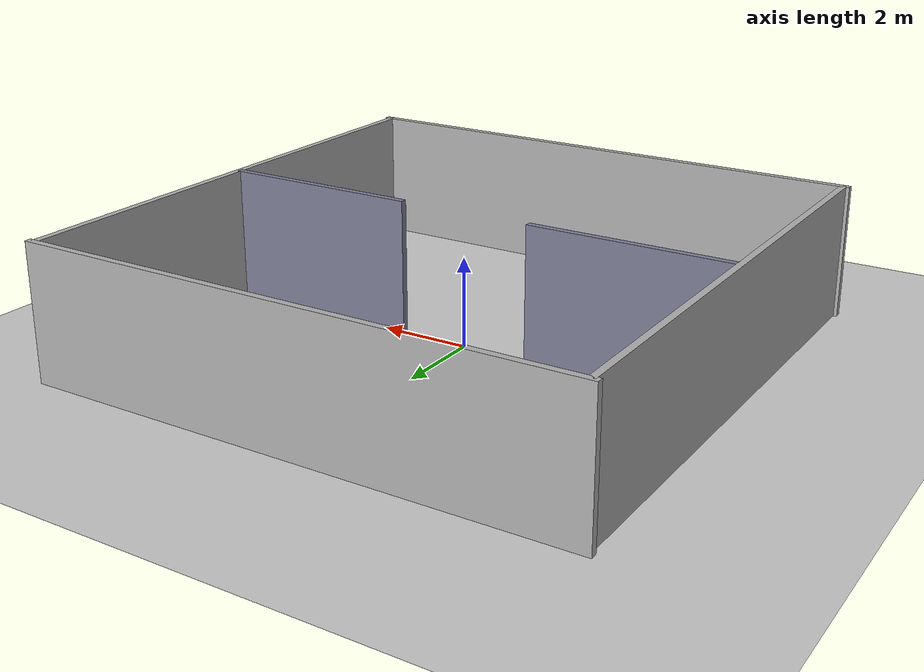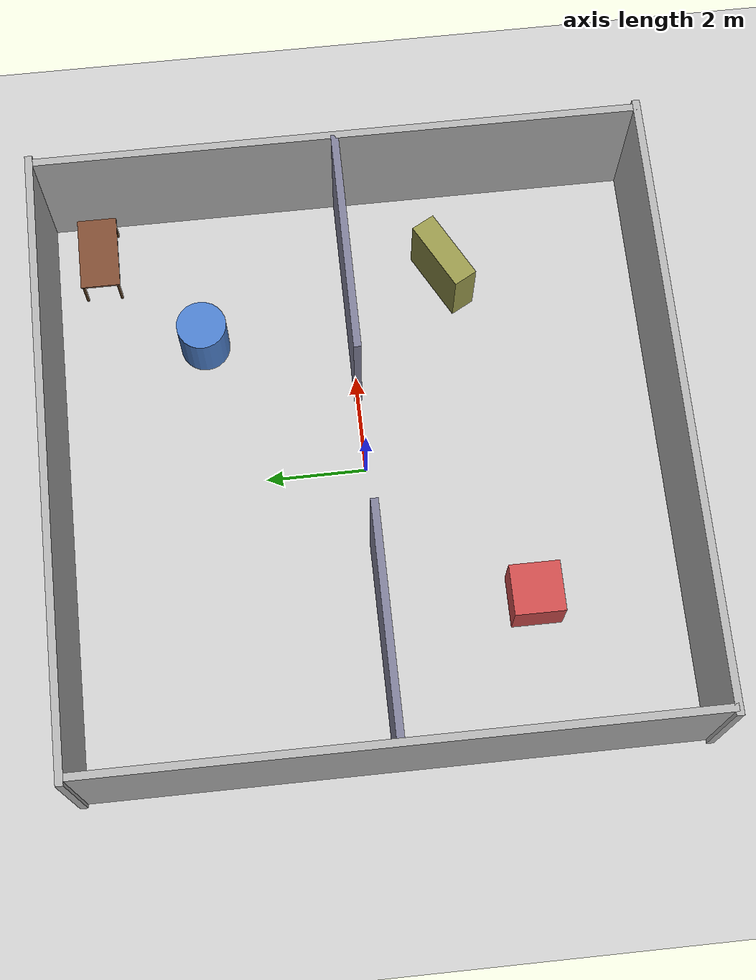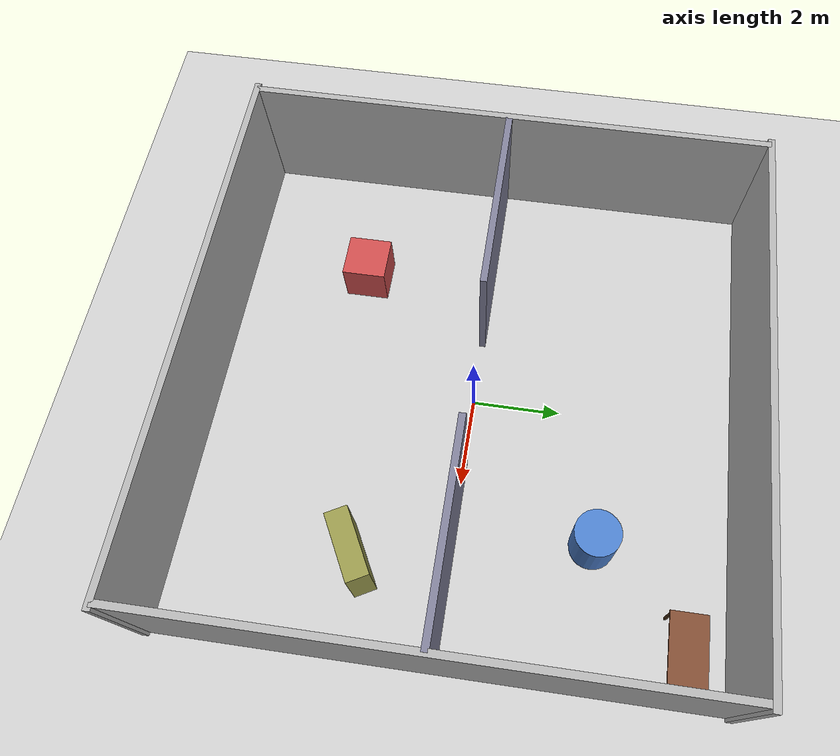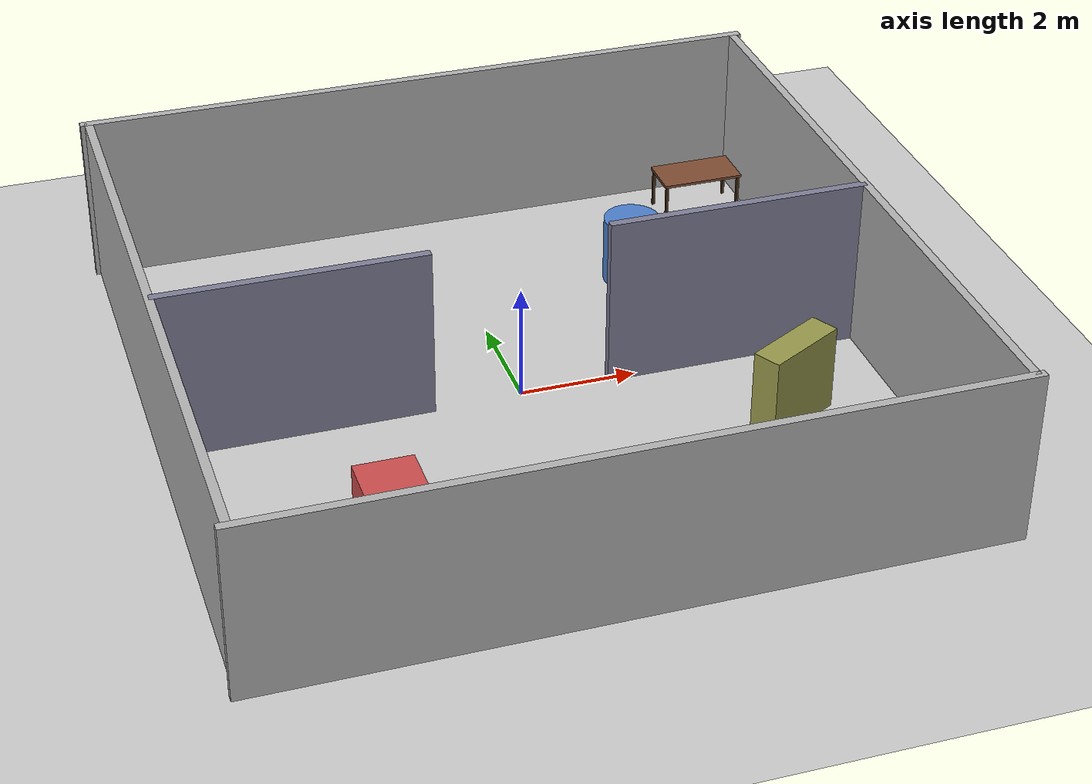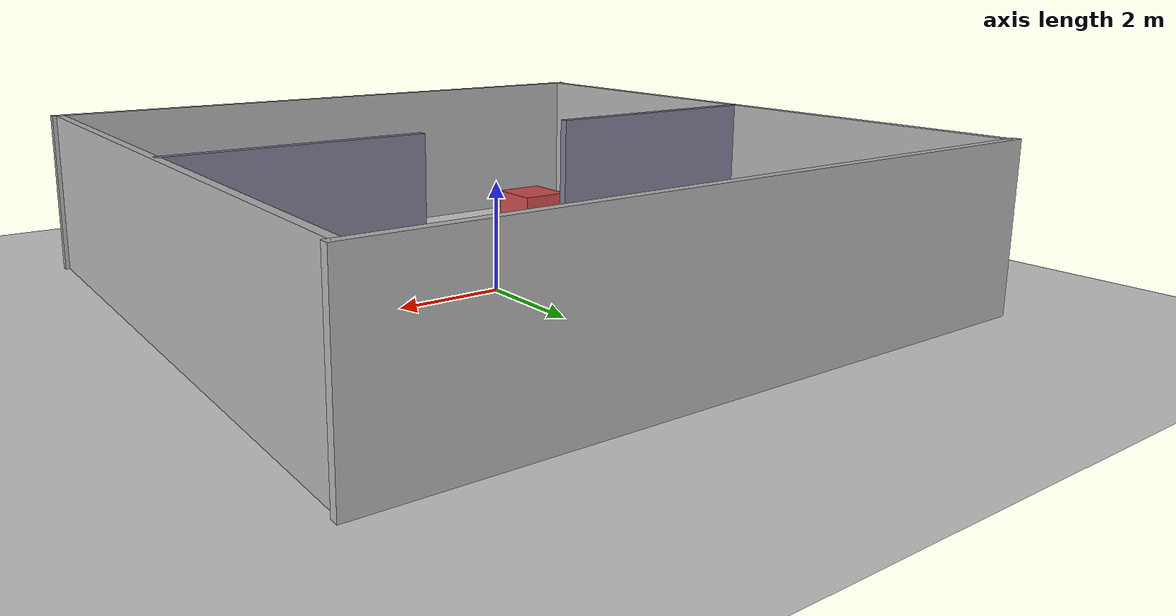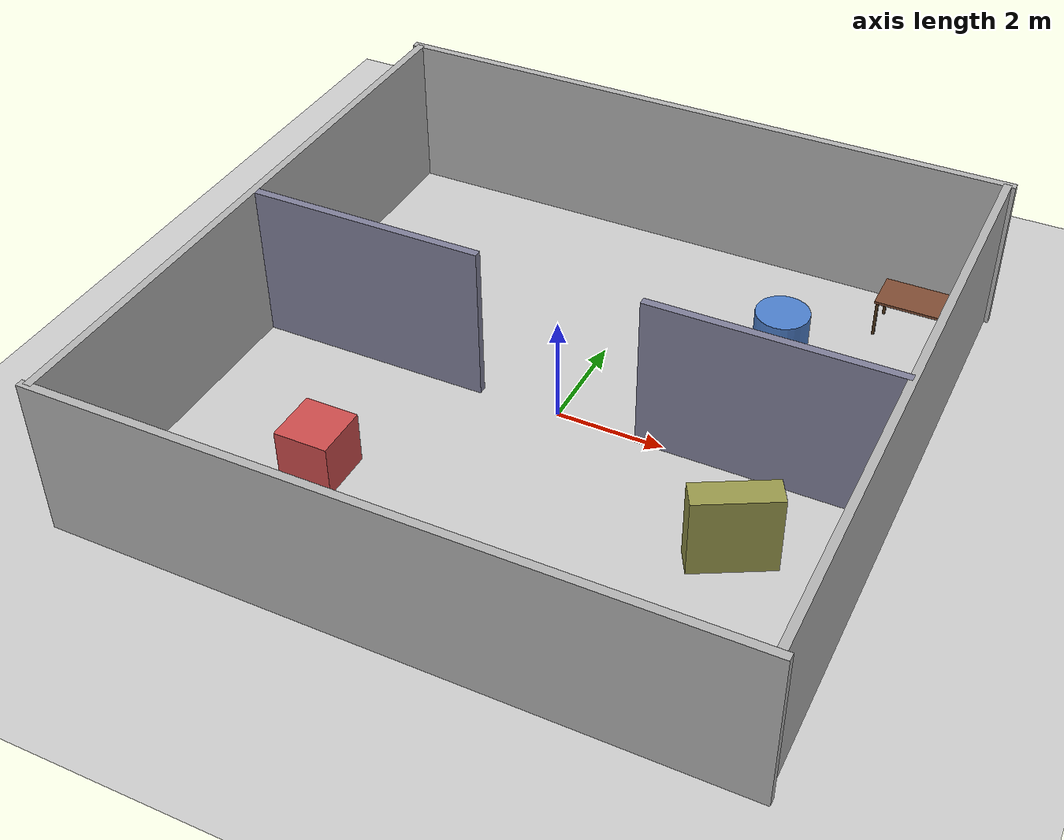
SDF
<?xml version="1.0" ?>
<sdf version="1.6">
  <world name="frontier_test">

    <include><uri>model://ground_plane</uri></include>
    <include><uri>model://sun</uri></include>

    <!-- ===== Outer walls (12m x 12m room) ===== -->
    <model name="wall_north">
      <static>true</static>
      <pose>0 6 1.5 0 0 0</pose>
      <link name="link">
        <collision name="c"><geometry><box><size>12.3 0.15 3</size></box></geometry></collision>
        <visual name="v">
          <geometry><box><size>12.3 0.15 3</size></box></geometry>
          <material><ambient>0.7 0.7 0.7 1</ambient></material>
        </visual>
      </link>
    </model>

    <model name="wall_south">
      <static>true</static>
      <pose>0 -6 1.5 0 0 0</pose>
      <link name="link">
        <collision name="c"><geometry><box><size>12.3 0.15 3</size></box></geometry></collision>
        <visual name="v">
          <geometry><box><size>12.3 0.15 3</size></box></geometry>
          <material><ambient>0.7 0.7 0.7 1</ambient></material>
        </visual>
      </link>
    </model>

    <model name="wall_east">
      <static>true</static>
      <pose>6 0 1.5 0 0 0</pose>
      <link name="link">
        <collision name="c"><geometry><box><size>0.15 12 3</size></box></geometry></collision>
        <visual name="v">
          <geometry><box><size>0.15 12 3</size></box></geometry>
          <material><ambient>0.7 0.7 0.7 1</ambient></material>
        </visual>
      </link>
    </model>

    <model name="wall_west">
      <static>true</static>
      <pose>-6 0 1.5 0 0 0</pose>
      <link name="link">
        <collision name="c"><geometry><box><size>0.15 12 3</size></box></geometry></collision>
        <visual name="v">
          <geometry><box><size>0.15 12 3</size></box></geometry>
          <material><ambient>0.7 0.7 0.7 1</ambient></material>
        </visual>
      </link>
    </model>

    <!-- ===== Divider with doorway in the middle ===== -->
    <!-- Left part of divider: x=-6 to -1.5 -->
    <model name="divider_left">
      <static>true</static>
      <pose>-3.75 0 1.5 0 0 0</pose>
      <link name="link">
        <collision name="c"><geometry><box><size>4.5 0.15 3</size></box></geometry></collision>
        <visual name="v">
          <geometry><box><size>4.5 0.15 3</size></box></geometry>
          <material><ambient>0.5 0.5 0.6 1</ambient></material>
        </visual>
      </link>
    </model>

    <!-- Right part: x=1.5 to 6 (gap from -1.5 to 1.5 = 3m doorway) -->
    <model name="divider_right">
      <static>true</static>
      <pose>3.75 0 1.5 0 0 0</pose>
      <link name="link">
        <collision name="c"><geometry><box><size>4.5 0.15 3</size></box></geometry></collision>
        <visual name="v">
          <geometry><box><size>4.5 0.15 3</size></box></geometry>
          <material><ambient>0.5 0.5 0.6 1</ambient></material>
        </visual>
      </link>
    </model>

    <!-- ===== Obstacles (give OctoMap something interesting) ===== -->
    <model name="box1">
      <static>true</static>
      <pose>-3 -3 0.5 0 0 0</pose>
      <link name="link">
        <collision name="c"><geometry><box><size>1 1 1</size></box></geometry></collision>
        <visual name="v">
          <geometry><box><size>1 1 1</size></box></geometry>
          <material><ambient>0.8 0.3 0.3 1</ambient></material>
        </visual>
      </link>
    </model>

    <model name="cylinder1">
      <static>true</static>
      <pose>3 3 0.6 0 0 0</pose>
      <link name="link">
        <collision name="c"><geometry><cylinder><radius>0.5</radius><length>1.2</length></cylinder></geometry></collision>
        <visual name="v">
          <geometry><cylinder><radius>0.5</radius><length>1.2</length></cylinder></geometry>
          <material><ambient>0.3 0.5 0.8 1</ambient></material>
        </visual>
      </link>
    </model>

    <model name="box2">
      <static>true</static>
      <pose>4 -2 0.75 0 0 0.5</pose>
      <link name="link">
        <collision name="c"><geometry><box><size>1.5 0.5 1.5</size></box></geometry></collision>
        <visual name="v">
          <geometry><box><size>1.5 0.5 1.5</size></box></geometry>
          <material><ambient>0.6 0.6 0.3 1</ambient></material>
        </visual>
      </link>
    </model>
    <!-- ===== Simple desk ===== -->
    <model name="desk">
      <static>true</static>
      <pose>5.0 5.0 0 0 0 0</pose>
      <link name="link">
        <collision name="top_c">
          <pose>0 0 0.75 0 0 0</pose>
          <geometry><box><size>1.5 0.8 0.05</size></box></geometry>
        </collision>
        <visual name="top_v">
          <pose>0 0 0.75 0 0 0</pose>
          <geometry><box><size>1.5 0.8 0.05</size></box></geometry>
          <material><ambient>0.5 0.3 0.2 1</ambient></material>
        </visual>

        <collision name="leg1_c">
          <pose>0.7 0.35 0.365 0 0 0</pose>
          <geometry><box><size>0.05 0.05 0.73</size></box></geometry>
        </collision>
        <visual name="leg1_v">
          <pose>0.7 0.35 0.365 0 0 0</pose>
          <geometry><box><size>0.05 0.05 0.73</size></box></geometry>
          <material><ambient>0.3 0.2 0.1 1</ambient></material>
        </visual>

        <collision name="leg2_c">
          <pose>-0.7 0.35 0.365 0 0 0</pose>
          <geometry><box><size>0.05 0.05 0.73</size></box></geometry>
        </collision>
        <visual name="leg2_v">
          <pose>-0.7 0.35 0.365 0 0 0</pose>
          <geometry><box><size>0.05 0.05 0.73</size></box></geometry>
          <material><ambient>0.3 0.2 0.1 1</ambient></material>
        </visual>

        <collision name="leg3_c">
          <pose>0.7 -0.35 0.365 0 0 0</pose>
          <geometry><box><size>0.05 0.05 0.73</size></box></geometry>
        </collision>
        <visual name="leg3_v">
          <pose>0.7 -0.35 0.365 0 0 0</pose>
          <geometry><box><size>0.05 0.05 0.73</size></box></geometry>
          <material><ambient>0.3 0.2 0.1 1</ambient></material>
        </visual>

        <collision name="leg4_c">
          <pose>-0.7 -0.35 0.365 0 0 0</pose>
          <geometry><box><size>0.05 0.05 0.73</size></box></geometry>
        </collision>
        <visual name="leg4_v">
          <pose>-0.7 -0.35 0.365 0 0 0</pose>
          <geometry><box><size>0.05 0.05 0.73</size></box></geometry>
          <material><ambient>0.3 0.2 0.1 1</ambient></material>
        </visual>
      </link>
    </model>

    <!-- ===== Physics ===== -->
    <physics name="default_physics" default="0" type="ode">
      <max_step_size>0.004</max_step_size>
      <real_time_factor>1</real_time_factor>
      <real_time_update_rate>250</real_time_update_rate>
    </physics>

  </world>
</sdf>
